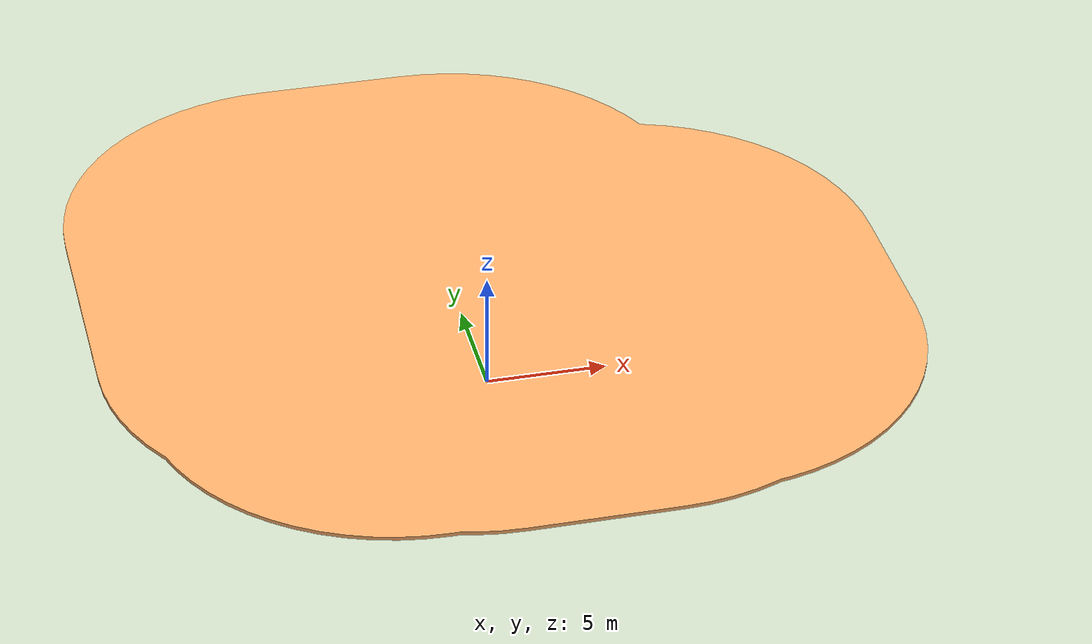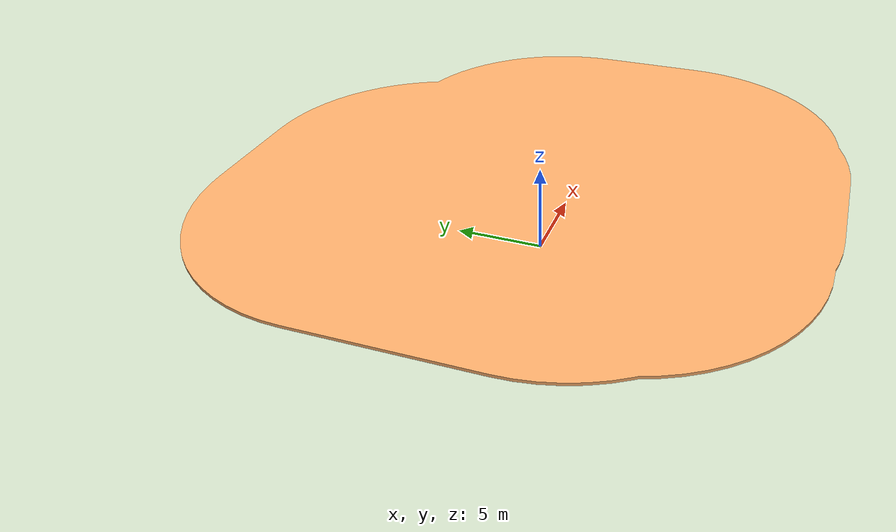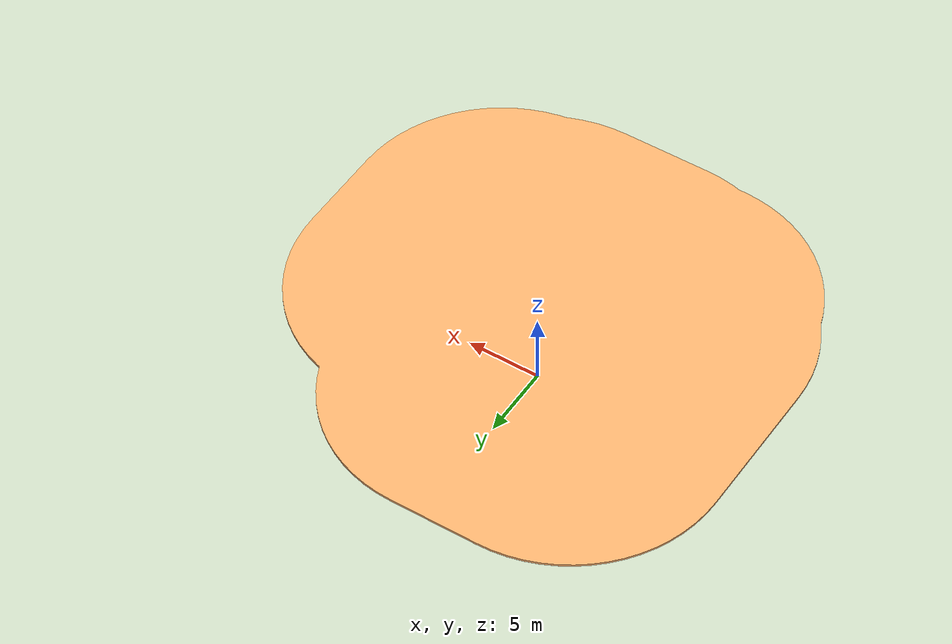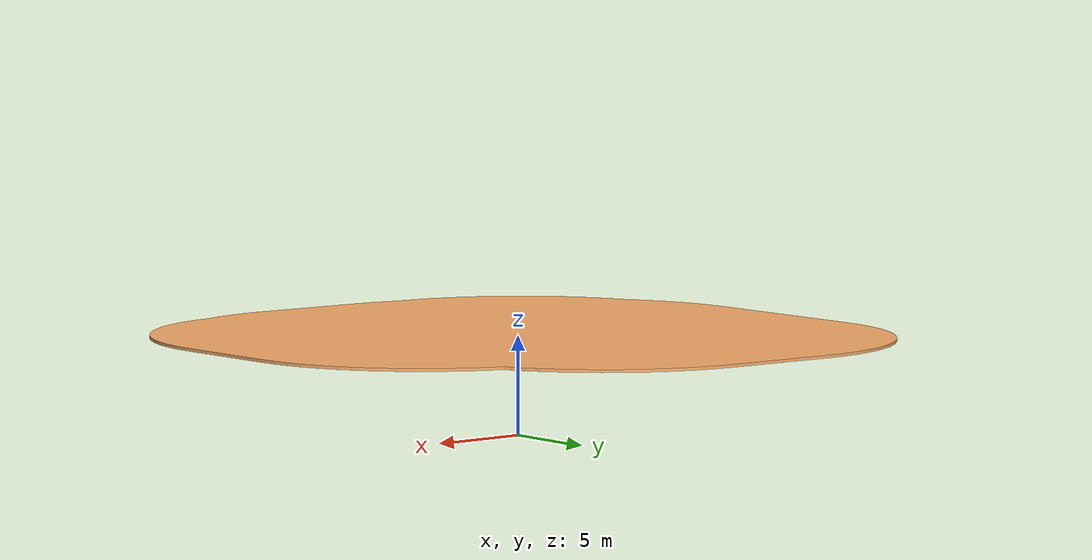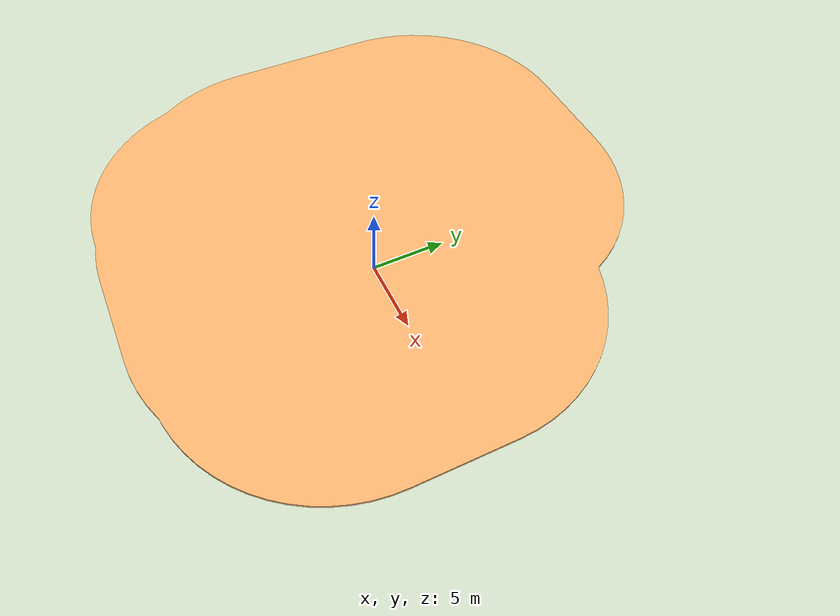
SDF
<?xml version="1.0" ?>
<sdf version="1.6">
  <model name="ceiling_4">
    <pose frame="">0 0 5 0 -0 0</pose>
    <static>1</static>
    <self_collide>0</self_collide>
    <allow_auto_disable>0</allow_auto_disable>
    <link name="mesh">
      <kinematic>0</kinematic>
      <gravity>1</gravity>
      <self_collide>0</self_collide>
      <collision name="collision">
        <geometry>
          <mesh>
            <uri>model://ceiling_4/meshes/tZqEuFnRRY.stl</uri>
            <scale>1 1 1</scale>
          </mesh>
        </geometry>
        <pose frame="">-0.791666 -1.30895 -0.075 0 -0 0</pose>
        <max_contacts>20</max_contacts>
      </collision>
      <visual name="visual">
        <geometry>
          <mesh>
            <uri>model://ceiling_4/meshes/PZRxPYRhGy.stl</uri>
            <scale>1 1 1</scale>
          </mesh>
        </geometry>
        <material>
          <ambient>1 0.694118 0.427451 1</ambient>
          <diffuse>1.0 0.6941176470588235 0.42745098039215684 1</diffuse>
        </material>
        <pose frame="">-0.791666 -1.30895 -0.075 0 -0 0</pose>
        <cast_shadows>1</cast_shadows>
        <transparency>0.0</transparency>
      </visual>
      <pose frame="">0 0 0 0 -0 0</pose>
    </link>
  </model>
</sdf>
